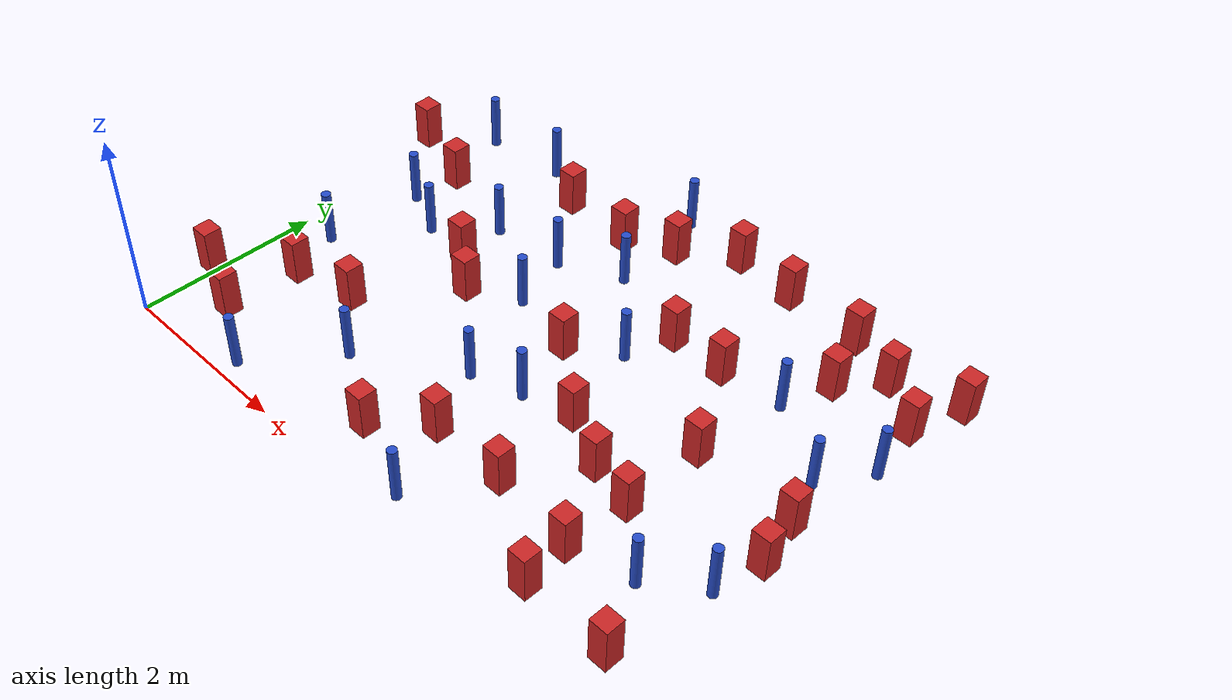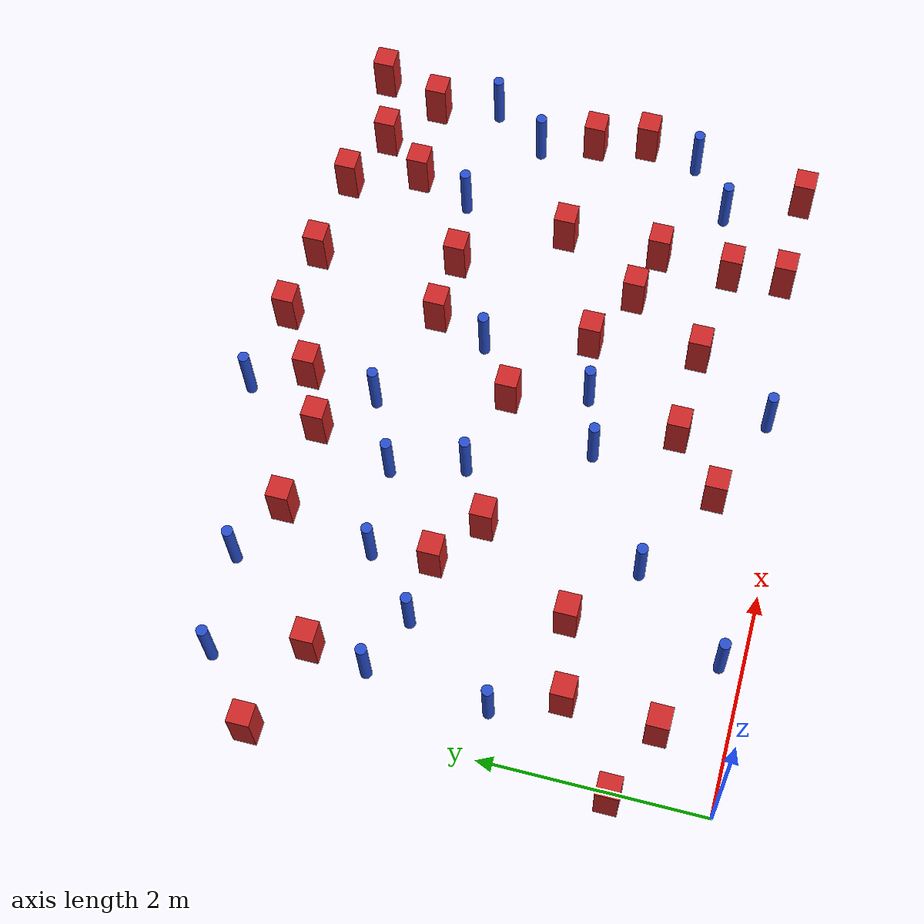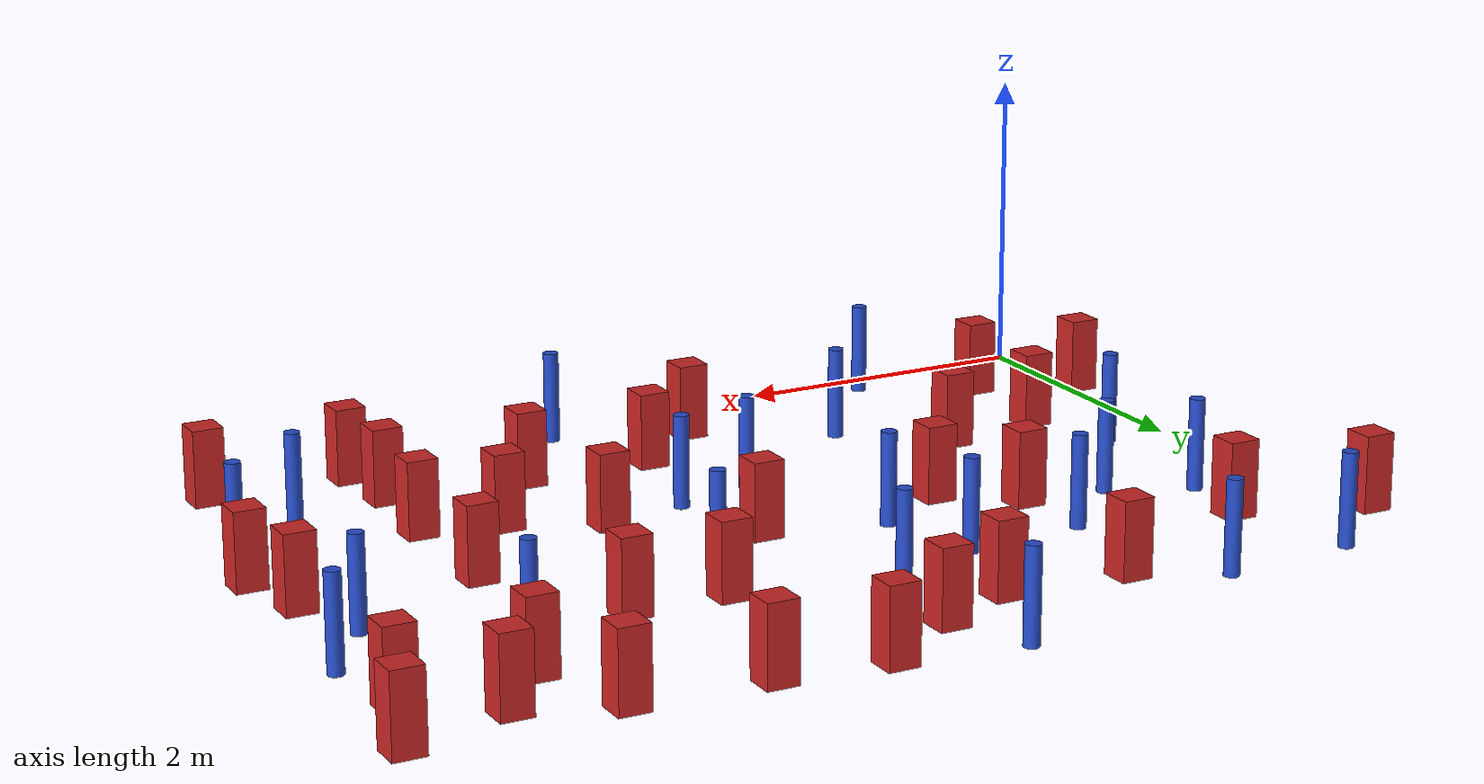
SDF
<sdf version="1.6">
 <model name="dense_88">
  <model name="pole_obstacle1">
   <static>true</static>
   <pose>3.00676567767 3.73780736281 7.38925637345e-09 -8.47170692798e-08 1.24976764939e-08 -1.74513093025e-07</pose>
   <link name="link">
    <pose>0 0 0.3 0 -0 0</pose>
    <inertial>
     <mass>1</mass>
     <inertia><ixx>0.145833</ixx><ixy>0</ixy><ixz>0</ixz><iyy>0.145833</iyy><iyz>0</iyz><izz>0.125</izz></inertia>
    </inertial>
    <collision name="collision">
     <geometry><cylinder><radius>0.05</radius><length>.6</length></cylinder></geometry>
    </collision>
    <visual name="visual">
     <geometry><cylinder><radius>0.05</radius><length>.6</length></cylinder></geometry>
     <material>
      <script><name>Gazebo/Blue</name><uri>file://media/materials/scripts/gazebo.material</uri></script>
     </material>
    </visual>
   </link>
  </model>
  <model name="square_post_obstacle8">
   <static>true</static>
   <pose>6.05506453243 0.368401354186 1.91545236811e-07 -7.35059704564e-06 1.12565212e-07 2.39332434364e-05</pose>
   <link name="link">
    <pose>0 0 0.25 0 -0 0</pose>
    <inertial>
     <mass>100</mass>
     <inertia>
      <ixx>0.166667</ixx>
      <ixy>0</ixy>
      <ixz>0</ixz>
      <iyy>0.166667</iyy>
      <iyz>0</iyz>
      <izz>0.166667</izz>
     </inertia>
    </inertial>
    <collision name="collision"><geometry><box><size>.2 .2 .5</size></box></geometry></collision>
    <visual name="visual">
     <geometry><box><size>.2 .2 .5</size></box></geometry>
     <material>
      <script><name>Gazebo/Red</name><uri>file://media/materials/scripts/gazebo.material</uri></script>
     </material>
    </visual>
   </link>
  </model>
  <model name="square_post_obstacle9">
   <static>true</static>
   <pose>2.03781863392 2.46468517248 1.91545236811e-07 -7.35059704564e-06 1.12565212e-07 2.39332434364e-05</pose>
   <link name="link">
    <pose>0 0 0.25 0 -0 0</pose>
    <inertial>
     <mass>100</mass>
     <inertia>
      <ixx>0.166667</ixx>
      <ixy>0</ixy>
      <ixz>0</ixz>
      <iyy>0.166667</iyy>
      <iyz>0</iyz>
      <izz>0.166667</izz>
     </inertia>
    </inertial>
    <collision name="collision"><geometry><box><size>.2 .2 .5</size></box></geometry></collision>
    <visual name="visual">
     <geometry><box><size>.2 .2 .5</size></box></geometry>
     <material>
      <script><name>Gazebo/Red</name><uri>file://media/materials/scripts/gazebo.material</uri></script>
     </material>
    </visual>
   </link>
  </model>
  <model name="pole_obstacle16">
   <static>true</static>
   <pose>0.417773265763 1.99657974552 7.38925637345e-09 -8.47170692799e-08 1.24976765022e-08 -1.74513093019e-07</pose>
   <link name="link">
    <pose>0 0 0.3 0 -0 0</pose>
    <inertial>
     <mass>1</mass>
     <inertia><ixx>0.145833</ixx><ixy>0</ixy><ixz>0</ixz><iyy>0.145833</iyy><iyz>0</iyz><izz>0.125</izz></inertia>
    </inertial>
    <collision name="collision">
     <geometry><cylinder><radius>0.05</radius><length>.6</length></cylinder></geometry>
    </collision>
    <visual name="visual">
     <geometry><cylinder><radius>0.05</radius><length>.6</length></cylinder></geometry>
     <material>
      <script><name>Gazebo/Blue</name><uri>file://media/materials/scripts/gazebo.material</uri></script>
     </material>
    </visual>
   </link>
  </model>
  <model name="square_post_obstacle17">
   <static>true</static>
   <pose>0.582227738402 3.61344862767 1.91545236811e-07 -7.35059704564e-06 1.12565212e-07 2.39332434364e-05</pose>
   <link name="link">
    <pose>0 0 0.25 0 -0 0</pose>
    <inertial>
     <mass>100</mass>
     <inertia>
      <ixx>0.166667</ixx>
      <ixy>0</ixy>
      <ixz>0</ixz>
      <iyy>0.166667</iyy>
      <iyz>0</iyz>
      <izz>0.166667</izz>
     </inertia>
    </inertial>
    <collision name="collision"><geometry><box><size>.2 .2 .5</size></box></geometry></collision>
    <visual name="visual">
     <geometry><box><size>.2 .2 .5</size></box></geometry>
     <material>
      <script><name>Gazebo/Red</name><uri>file://media/materials/scripts/gazebo.material</uri></script>
     </material>
    </visual>
   </link>
  </model>
  <model name="pole_obstacle21">
   <static>true</static>
   <pose>1.55318609625 3.35626687531 7.38925637345e-09 -8.47170692799e-08 1.24976765053e-08 -1.74513093017e-07</pose>
   <link name="link">
    <pose>0 0 0.3 0 -0 0</pose>
    <inertial>
     <mass>1</mass>
     <inertia><ixx>0.145833</ixx><ixy>0</ixy><ixz>0</ixz><iyy>0.145833</iyy><iyz>0</iyz><izz>0.125</izz></inertia>
    </inertial>
    <collision name="collision">
     <geometry><cylinder><radius>0.05</radius><length>.6</length></cylinder></geometry>
    </collision>
    <visual name="visual">
     <geometry><cylinder><radius>0.05</radius><length>.6</length></cylinder></geometry>
     <material>
      <script><name>Gazebo/Blue</name><uri>file://media/materials/scripts/gazebo.material</uri></script>
     </material>
    </visual>
   </link>
  </model>
  <model name="pole_obstacle23">
   <static>true</static>
   <pose>0.503475183956 3.09309964641 7.38925637345e-09 -8.471706928e-08 1.2497676512e-08 -1.74513093015e-07</pose>
   <link name="link">
    <pose>0 0 0.3 0 -0 0</pose>
    <inertial>
     <mass>1</mass>
     <inertia><ixx>0.145833</ixx><ixy>0</ixy><ixz>0</ixz><iyy>0.145833</iyy><iyz>0</iyz><izz>0.125</izz></inertia>
    </inertial>
    <collision name="collision">
     <geometry><cylinder><radius>0.05</radius><length>.6</length></cylinder></geometry>
    </collision>
    <visual name="visual">
     <geometry><cylinder><radius>0.05</radius><length>.6</length></cylinder></geometry>
     <material>
      <script><name>Gazebo/Blue</name><uri>file://media/materials/scripts/gazebo.material</uri></script>
     </material>
    </visual>
   </link>
  </model>
  <model name="pole_obstacle30">
   <static>true</static>
   <pose>2.36036367423 3.42401189032 7.38925637345e-09 -8.47170692798e-08 1.24976764939e-08 -1.74513093025e-07</pose>
   <link name="link">
    <pose>0 0 0.3 0 -0 0</pose>
    <inertial>
     <mass>1</mass>
     <inertia><ixx>0.145833</ixx><ixy>0</ixy><ixz>0</ixz><iyy>0.145833</iyy><iyz>0</iyz><izz>0.125</izz></inertia>
    </inertial>
    <collision name="collision">
     <geometry><cylinder><radius>0.05</radius><length>.6</length></cylinder></geometry>
    </collision>
    <visual name="visual">
     <geometry><cylinder><radius>0.05</radius><length>.6</length></cylinder></geometry>
     <material>
      <script><name>Gazebo/Blue</name><uri>file://media/materials/scripts/gazebo.material</uri></script>
     </material>
    </visual>
   </link>
  </model>
  <model name="pole_obstacle36">
   <static>true</static>
   <pose>3.79349859983 2.92689420763 7.38925637345e-09 -8.47170692798e-08 1.24976764939e-08 -1.74513093025e-07</pose>
   <link name="link">
    <pose>0 0 0.3 0 -0 0</pose>
    <inertial>
     <mass>1</mass>
     <inertia><ixx>0.145833</ixx><ixy>0</ixy><ixz>0</ixz><iyy>0.145833</iyy><iyz>0</iyz><izz>0.125</izz></inertia>
    </inertial>
    <collision name="collision">
     <geometry><cylinder><radius>0.05</radius><length>.6</length></cylinder></geometry>
    </collision>
    <visual name="visual">
     <geometry><cylinder><radius>0.05</radius><length>.6</length></cylinder></geometry>
     <material>
      <script><name>Gazebo/Blue</name><uri>file://media/materials/scripts/gazebo.material</uri></script>
     </material>
    </visual>
   </link>
  </model>
  <model name="pole_obstacle41">
   <static>true</static>
   <pose>0.337257957748 4.41213435781 7.38925637345e-09 -8.471706928e-08 1.24976765079e-08 -1.74513093015e-07</pose>
   <link name="link">
    <pose>0 0 0.3 0 -0 0</pose>
    <inertial>
     <mass>1</mass>
     <inertia><ixx>0.145833</ixx><ixy>0</ixy><ixz>0</ixz><iyy>0.145833</iyy><iyz>0</iyz><izz>0.125</izz></inertia>
    </inertial>
    <collision name="collision">
     <geometry><cylinder><radius>0.05</radius><length>.6</length></cylinder></geometry>
    </collision>
    <visual name="visual">
     <geometry><cylinder><radius>0.05</radius><length>.6</length></cylinder></geometry>
     <material>
      <script><name>Gazebo/Blue</name><uri>file://media/materials/scripts/gazebo.material</uri></script>
     </material>
    </visual>
   </link>
  </model>
  <model name="pole_obstacle45">
   <static>true</static>
   <pose>6.23284091133 1.44103149627 7.38925637345e-09 -8.471706928e-08 1.24976765134e-08 -1.74513093015e-07</pose>
   <link name="link">
    <pose>0 0 0.3 0 -0 0</pose>
    <inertial>
     <mass>1</mass>
     <inertia><ixx>0.145833</ixx><ixy>0</ixy><ixz>0</ixz><iyy>0.145833</iyy><iyz>0</iyz><izz>0.125</izz></inertia>
    </inertial>
    <collision name="collision">
     <geometry><cylinder><radius>0.05</radius><length>.6</length></cylinder></geometry>
    </collision>
    <visual name="visual">
     <geometry><cylinder><radius>0.05</radius><length>.6</length></cylinder></geometry>
     <material>
      <script><name>Gazebo/Blue</name><uri>file://media/materials/scripts/gazebo.material</uri></script>
     </material>
    </visual>
   </link>
  </model>
  <model name="square_post_obstacle36">
   <static>true</static>
   <pose>1.34840584041 1.54676185632 1.91545236811e-07 -7.35059704564e-06 1.12565212e-07 2.39332434364e-05</pose>
   <link name="link">
    <pose>0 0 0.25 0 -0 0</pose>
    <inertial>
     <mass>100</mass>
     <inertia>
      <ixx>0.166667</ixx>
      <ixy>0</ixy>
      <ixz>0</ixz>
      <iyy>0.166667</iyy>
      <iyz>0</iyz>
      <izz>0.166667</izz>
     </inertia>
    </inertial>
    <collision name="collision"><geometry><box><size>.2 .2 .5</size></box></geometry></collision>
    <visual name="visual">
     <geometry><box><size>.2 .2 .5</size></box></geometry>
     <material>
      <script><name>Gazebo/Red</name><uri>file://media/materials/scripts/gazebo.material</uri></script>
     </material>
    </visual>
   </link>
  </model>
  <model name="square_post_obstacle39">
   <static>true</static>
   <pose>5.21998832689 4.64930276739 1.91545236811e-07 -7.35059704564e-06 1.12565212e-07 2.39332434364e-05</pose>
   <link name="link">
    <pose>0 0 0.25 0 -0 0</pose>
    <inertial>
     <mass>100</mass>
     <inertia>
      <ixx>0.166667</ixx>
      <ixy>0</ixy>
      <ixz>0</ixz>
      <iyy>0.166667</iyy>
      <iyz>0</iyz>
      <izz>0.166667</izz>
     </inertia>
    </inertial>
    <collision name="collision"><geometry><box><size>.2 .2 .5</size></box></geometry></collision>
    <visual name="visual">
     <geometry><box><size>.2 .2 .5</size></box></geometry>
     <material>
      <script><name>Gazebo/Red</name><uri>file://media/materials/scripts/gazebo.material</uri></script>
     </material>
    </visual>
   </link>
  </model>
  <model name="square_post_obstacle41">
   <static>true</static>
   <pose>4.59716601824 3.40265601159 1.91545236811e-07 -7.35059704564e-06 1.12565212e-07 2.39332434364e-05</pose>
   <link name="link">
    <pose>0 0 0.25 0 -0 0</pose>
    <inertial>
     <mass>100</mass>
     <inertia>
      <ixx>0.166667</ixx>
      <ixy>0</ixy>
      <ixz>0</ixz>
      <iyy>0.166667</iyy>
      <iyz>0</iyz>
      <izz>0.166667</izz>
     </inertia>
    </inertial>
    <collision name="collision"><geometry><box><size>.2 .2 .5</size></box></geometry></collision>
    <visual name="visual">
     <geometry><box><size>.2 .2 .5</size></box></geometry>
     <material>
      <script><name>Gazebo/Red</name><uri>file://media/materials/scripts/gazebo.material</uri></script>
     </material>
    </visual>
   </link>
  </model>
  <model name="pole_obstacle63">
   <static>true</static>
   <pose>2.54129996785 2.76347063465 7.38925637345e-09 -8.47170692798e-08 1.24976764939e-08 -1.74513093025e-07</pose>
   <link name="link">
    <pose>0 0 0.3 0 -0 0</pose>
    <inertial>
     <mass>1</mass>
     <inertia><ixx>0.145833</ixx><ixy>0</ixy><ixz>0</ixz><iyy>0.145833</iyy><iyz>0</iyz><izz>0.125</izz></inertia>
    </inertial>
    <collision name="collision">
     <geometry><cylinder><radius>0.05</radius><length>.6</length></cylinder></geometry>
    </collision>
    <visual name="visual">
     <geometry><cylinder><radius>0.05</radius><length>.6</length></cylinder></geometry>
     <material>
      <script><name>Gazebo/Blue</name><uri>file://media/materials/scripts/gazebo.material</uri></script>
     </material>
    </visual>
   </link>
  </model>
  <model name="pole_obstacle64">
   <static>true</static>
   <pose>1.94392713426 1.04446652824 7.38925637345e-09 -8.471706928e-08 1.24976765116e-08 -1.74513093013e-07</pose>
   <link name="link">
    <pose>0 0 0.3 0 -0 0</pose>
    <inertial>
     <mass>1</mass>
     <inertia><ixx>0.145833</ixx><ixy>0</ixy><ixz>0</ixz><iyy>0.145833</iyy><iyz>0</iyz><izz>0.125</izz></inertia>
    </inertial>
    <collision name="collision">
     <geometry><cylinder><radius>0.05</radius><length>.6</length></cylinder></geometry>
    </collision>
    <visual name="visual">
     <geometry><cylinder><radius>0.05</radius><length>.6</length></cylinder></geometry>
     <material>
      <script><name>Gazebo/Blue</name><uri>file://media/materials/scripts/gazebo.material</uri></script>
     </material>
    </visual>
   </link>
  </model>
  <model name="pole_obstacle67">
   <static>true</static>
   <pose>1.23654706711 4.49518239781 7.38925637345e-09 -8.47170692799e-08 1.24976765033e-08 -1.74513093018e-07</pose>
   <link name="link">
    <pose>0 0 0.3 0 -0 0</pose>
    <inertial>
     <mass>1</mass>
     <inertia><ixx>0.145833</ixx><ixy>0</ixy><ixz>0</ixz><iyy>0.145833</iyy><iyz>0</iyz><izz>0.125</izz></inertia>
    </inertial>
    <collision name="collision">
     <geometry><cylinder><radius>0.05</radius><length>.6</length></cylinder></geometry>
    </collision>
    <visual name="visual">
     <geometry><cylinder><radius>0.05</radius><length>.6</length></cylinder></geometry>
     <material>
      <script><name>Gazebo/Blue</name><uri>file://media/materials/scripts/gazebo.material</uri></script>
     </material>
    </visual>
   </link>
  </model>
  <model name="square_post_obstacle51">
   <static>true</static>
   <pose>5.13246928677 2.47707967401 1.91545236811e-07 -7.35059704564e-06 1.12565212e-07 2.39332434364e-05</pose>
   <link name="link">
    <pose>0 0 0.25 0 -0 0</pose>
    <inertial>
     <mass>100</mass>
     <inertia>
      <ixx>0.166667</ixx>
      <ixy>0</ixy>
      <ixz>0</ixz>
      <iyy>0.166667</iyy>
      <iyz>0</iyz>
      <izz>0.166667</izz>
     </inertia>
    </inertial>
    <collision name="collision"><geometry><box><size>.2 .2 .5</size></box></geometry></collision>
    <visual name="visual">
     <geometry><box><size>.2 .2 .5</size></box></geometry>
     <material>
      <script><name>Gazebo/Red</name><uri>file://media/materials/scripts/gazebo.material</uri></script>
     </material>
    </visual>
   </link>
  </model>
  <model name="square_post_obstacle55">
   <static>true</static>
   <pose>4.05338056155 1.98004612645 1.91545236811e-07 -7.35059704564e-06 1.12565212e-07 2.39332434364e-05</pose>
   <link name="link">
    <pose>0 0 0.25 0 -0 0</pose>
    <inertial>
     <mass>100</mass>
     <inertia>
      <ixx>0.166667</ixx>
      <ixy>0</ixy>
      <ixz>0</ixz>
      <iyy>0.166667</iyy>
      <iyz>0</iyz>
      <izz>0.166667</izz>
     </inertia>
    </inertial>
    <collision name="collision"><geometry><box><size>.2 .2 .5</size></box></geometry></collision>
    <visual name="visual">
     <geometry><box><size>.2 .2 .5</size></box></geometry>
     <material>
      <script><name>Gazebo/Red</name><uri>file://media/materials/scripts/gazebo.material</uri></script>
     </material>
    </visual>
   </link>
  </model>
  <model name="square_post_obstacle58">
   <static>true</static>
   <pose>6.34560710064 1.94424547865 1.91545236811e-07 -7.35059704564e-06 1.12565212e-07 2.39332434364e-05</pose>
   <link name="link">
    <pose>0 0 0.25 0 -0 0</pose>
    <inertial>
     <mass>100</mass>
     <inertia>
      <ixx>0.166667</ixx>
      <ixy>0</ixy>
      <ixz>0</ixz>
      <iyy>0.166667</iyy>
      <iyz>0</iyz>
      <izz>0.166667</izz>
     </inertia>
    </inertial>
    <collision name="collision"><geometry><box><size>.2 .2 .5</size></box></geometry></collision>
    <visual name="visual">
     <geometry><box><size>.2 .2 .5</size></box></geometry>
     <material>
      <script><name>Gazebo/Red</name><uri>file://media/materials/scripts/gazebo.material</uri></script>
     </material>
    </visual>
   </link>
  </model>
  <model name="square_post_obstacle60">
   <static>true</static>
   <pose>6.22812129086 2.44280715354 1.91545236811e-07 -7.35059704564e-06 1.12565212e-07 2.39332434364e-05</pose>
   <link name="link">
    <pose>0 0 0.25 0 -0 0</pose>
    <inertial>
     <mass>100</mass>
     <inertia>
      <ixx>0.166667</ixx>
      <ixy>0</ixy>
      <ixz>0</ixz>
      <iyy>0.166667</iyy>
      <iyz>0</iyz>
      <izz>0.166667</izz>
     </inertia>
    </inertial>
    <collision name="collision"><geometry><box><size>.2 .2 .5</size></box></geometry></collision>
    <visual name="visual">
     <geometry><box><size>.2 .2 .5</size></box></geometry>
     <material>
      <script><name>Gazebo/Red</name><uri>file://media/materials/scripts/gazebo.material</uri></script>
     </material>
    </visual>
   </link>
  </model>
  <model name="square_post_obstacle61">
   <static>true</static>
   <pose>6.28039331181 4.05074198997 1.91545236811e-07 -7.35059704564e-06 1.12565212e-07 2.39332434364e-05</pose>
   <link name="link">
    <pose>0 0 0.25 0 -0 0</pose>
    <inertial>
     <mass>100</mass>
     <inertia>
      <ixx>0.166667</ixx>
      <ixy>0</ixy>
      <ixz>0</ixz>
      <iyy>0.166667</iyy>
      <iyz>0</iyz>
      <izz>0.166667</izz>
     </inertia>
    </inertial>
    <collision name="collision"><geometry><box><size>.2 .2 .5</size></box></geometry></collision>
    <visual name="visual">
     <geometry><box><size>.2 .2 .5</size></box></geometry>
     <material>
      <script><name>Gazebo/Red</name><uri>file://media/materials/scripts/gazebo.material</uri></script>
     </material>
    </visual>
   </link>
  </model>
  <model name="square_post_obstacle63">
   <static>true</static>
   <pose>2.79519327134 0.554088566454 1.91545236811e-07 -7.35059704564e-06 1.12565212e-07 2.39332434364e-05</pose>
   <link name="link">
    <pose>0 0 0.25 0 -0 0</pose>
    <inertial>
     <mass>100</mass>
     <inertia>
      <ixx>0.166667</ixx>
      <ixy>0</ixy>
      <ixz>0</ixz>
      <iyy>0.166667</iyy>
      <iyz>0</iyz>
      <izz>0.166667</izz>
     </inertia>
    </inertial>
    <collision name="collision"><geometry><box><size>.2 .2 .5</size></box></geometry></collision>
    <visual name="visual">
     <geometry><box><size>.2 .2 .5</size></box></geometry>
     <material>
      <script><name>Gazebo/Red</name><uri>file://media/materials/scripts/gazebo.material</uri></script>
     </material>
    </visual>
   </link>
  </model>
  <model name="square_post_obstacle65">
   <static>true</static>
   <pose>1.59475968034 2.80629622628 1.91545236811e-07 -7.35059704564e-06 1.12565212e-07 2.39332434364e-05</pose>
   <link name="link">
    <pose>0 0 0.25 0 -0 0</pose>
    <inertial>
     <mass>100</mass>
     <inertia>
      <ixx>0.166667</ixx>
      <ixy>0</ixy>
      <ixz>0</ixz>
      <iyy>0.166667</iyy>
      <iyz>0</iyz>
      <izz>0.166667</izz>
     </inertia>
    </inertial>
    <collision name="collision"><geometry><box><size>.2 .2 .5</size></box></geometry></collision>
    <visual name="visual">
     <geometry><box><size>.2 .2 .5</size></box></geometry>
     <material>
      <script><name>Gazebo/Red</name><uri>file://media/materials/scripts/gazebo.material</uri></script>
     </material>
    </visual>
   </link>
  </model>
  <model name="pole_obstacle82">
   <static>true</static>
   <pose>3.4986279685 1.86415683768 7.38925637345e-09 -8.471706928e-08 1.24976765152e-08 -1.74513093012e-07</pose>
   <link name="link">
    <pose>0 0 0.3 0 -0 0</pose>
    <inertial>
     <mass>1</mass>
     <inertia><ixx>0.145833</ixx><ixy>0</ixy><ixz>0</ixz><iyy>0.145833</iyy><iyz>0</iyz><izz>0.125</izz></inertia>
    </inertial>
    <collision name="collision">
     <geometry><cylinder><radius>0.05</radius><length>.6</length></cylinder></geometry>
    </collision>
    <visual name="visual">
     <geometry><cylinder><radius>0.05</radius><length>.6</length></cylinder></geometry>
     <material>
      <script><name>Gazebo/Blue</name><uri>file://media/materials/scripts/gazebo.material</uri></script>
     </material>
    </visual>
   </link>
  </model>
  <model name="pole_obstacle89">
   <static>true</static>
   <pose>1.28467313891 0.200555245513 7.38925637345e-09 -8.47170692799e-08 1.24976765057e-08 -1.74513093016e-07</pose>
   <link name="link">
    <pose>0 0 0.3 0 -0 0</pose>
    <inertial>
     <mass>1</mass>
     <inertia><ixx>0.145833</ixx><ixy>0</ixy><ixz>0</ixz><iyy>0.145833</iyy><iyz>0</iyz><izz>0.125</izz></inertia>
    </inertial>
    <collision name="collision">
     <geometry><cylinder><radius>0.05</radius><length>.6</length></cylinder></geometry>
    </collision>
    <visual name="visual">
     <geometry><cylinder><radius>0.05</radius><length>.6</length></cylinder></geometry>
     <material>
      <script><name>Gazebo/Blue</name><uri>file://media/materials/scripts/gazebo.material</uri></script>
     </material>
    </visual>
   </link>
  </model>
  <model name="square_post_obstacle79">
   <static>true</static>
   <pose>3.6672656424 4.77400452804 1.91545236811e-07 -7.35059704564e-06 1.12565212e-07 2.39332434364e-05</pose>
   <link name="link">
    <pose>0 0 0.25 0 -0 0</pose>
    <inertial>
     <mass>100</mass>
     <inertia>
      <ixx>0.166667</ixx>
      <ixy>0</ixy>
      <ixz>0</ixz>
      <iyy>0.166667</iyy>
      <iyz>0</iyz>
      <izz>0.166667</izz>
     </inertia>
    </inertial>
    <collision name="collision"><geometry><box><size>.2 .2 .5</size></box></geometry></collision>
    <visual name="visual">
     <geometry><box><size>.2 .2 .5</size></box></geometry>
     <material>
      <script><name>Gazebo/Red</name><uri>file://media/materials/scripts/gazebo.material</uri></script>
     </material>
    </visual>
   </link>
  </model>
  <model name="square_post_obstacle84">
   <static>true</static>
   <pose>5.12848473698 1.56891961007 1.91545236811e-07 -7.35059704564e-06 1.12565212e-07 2.39332434364e-05</pose>
   <link name="link">
    <pose>0 0 0.25 0 -0 0</pose>
    <inertial>
     <mass>100</mass>
     <inertia>
      <ixx>0.166667</ixx>
      <ixy>0</ixy>
      <ixz>0</ixz>
      <iyy>0.166667</iyy>
      <iyz>0</iyz>
      <izz>0.166667</izz>
     </inertia>
    </inertial>
    <collision name="collision"><geometry><box><size>.2 .2 .5</size></box></geometry></collision>
    <visual name="visual">
     <geometry><box><size>.2 .2 .5</size></box></geometry>
     <material>
      <script><name>Gazebo/Red</name><uri>file://media/materials/scripts/gazebo.material</uri></script>
     </material>
    </visual>
   </link>
  </model>
  <model name="square_post_obstacle96">
   <static>true</static>
   <pose>1.77273773107 4.21609472806 1.91545236811e-07 -7.35059704564e-06 1.12565212e-07 2.39332434364e-05</pose>
   <link name="link">
    <pose>0 0 0.25 0 -0 0</pose>
    <inertial>
     <mass>100</mass>
     <inertia>
      <ixx>0.166667</ixx>
      <ixy>0</ixy>
      <ixz>0</ixz>
      <iyy>0.166667</iyy>
      <iyz>0</iyz>
      <izz>0.166667</izz>
     </inertia>
    </inertial>
    <collision name="collision"><geometry><box><size>.2 .2 .5</size></box></geometry></collision>
    <visual name="visual">
     <geometry><box><size>.2 .2 .5</size></box></geometry>
     <material>
      <script><name>Gazebo/Red</name><uri>file://media/materials/scripts/gazebo.material</uri></script>
     </material>
    </visual>
   </link>
  </model>
  <model name="pole_obstacle107">
   <static>true</static>
   <pose>5.72319153716 1.0579496729 7.38925637345e-09 -8.471706928e-08 1.24976765134e-08 -1.74513093015e-07</pose>
   <link name="link">
    <pose>0 0 0.3 0 -0 0</pose>
    <inertial>
     <mass>1</mass>
     <inertia><ixx>0.145833</ixx><ixy>0</ixy><ixz>0</ixz><iyy>0.145833</iyy><iyz>0</iyz><izz>0.125</izz></inertia>
    </inertial>
    <collision name="collision">
     <geometry><cylinder><radius>0.05</radius><length>.6</length></cylinder></geometry>
    </collision>
    <visual name="visual">
     <geometry><cylinder><radius>0.05</radius><length>.6</length></cylinder></geometry>
     <material>
      <script><name>Gazebo/Blue</name><uri>file://media/materials/scripts/gazebo.material</uri></script>
     </material>
    </visual>
   </link>
  </model>
  <model name="pole_obstacle109">
   <static>true</static>
   <pose>2.95640503992 1.69918804623 7.38925637345e-09 -8.471706928e-08 1.24976765152e-08 -1.74513093012e-07</pose>
   <link name="link">
    <pose>0 0 0.3 0 -0 0</pose>
    <inertial>
     <mass>1</mass>
     <inertia><ixx>0.145833</ixx><ixy>0</ixy><ixz>0</ixz><iyy>0.145833</iyy><iyz>0</iyz><izz>0.125</izz></inertia>
    </inertial>
    <collision name="collision">
     <geometry><cylinder><radius>0.05</radius><length>.6</length></cylinder></geometry>
    </collision>
    <visual name="visual">
     <geometry><cylinder><radius>0.05</radius><length>.6</length></cylinder></geometry>
     <material>
      <script><name>Gazebo/Blue</name><uri>file://media/materials/scripts/gazebo.material</uri></script>
     </material>
    </visual>
   </link>
  </model>
  <model name="square_post_obstacle106">
   <static>true</static>
   <pose>3.29907235706 0.99927008219 1.91545236811e-07 -7.35059704564e-06 1.12565212e-07 2.39332434364e-05</pose>
   <link name="link">
    <pose>0 0 0.25 0 -0 0</pose>
    <inertial>
     <mass>100</mass>
     <inertia>
      <ixx>0.166667</ixx>
      <ixy>0</ixy>
      <ixz>0</ixz>
      <iyy>0.166667</iyy>
      <iyz>0</iyz>
      <izz>0.166667</izz>
     </inertia>
    </inertial>
    <collision name="collision"><geometry><box><size>.2 .2 .5</size></box></geometry></collision>
    <visual name="visual">
     <geometry><box><size>.2 .2 .5</size></box></geometry>
     <material>
      <script><name>Gazebo/Red</name><uri>file://media/materials/scripts/gazebo.material</uri></script>
     </material>
    </visual>
   </link>
  </model>
  <model name="square_post_obstacle108">
   <static>true</static>
   <pose>5.44771622154 4.00115317048 1.91545236811e-07 -7.35059704564e-06 1.12565212e-07 2.39332434364e-05</pose>
   <link name="link">
    <pose>0 0 0.25 0 -0 0</pose>
    <inertial>
     <mass>100</mass>
     <inertia>
      <ixx>0.166667</ixx>
      <ixy>0</ixy>
      <ixz>0</ixz>
      <iyy>0.166667</iyy>
      <iyz>0</iyz>
      <izz>0.166667</izz>
     </inertia>
    </inertial>
    <collision name="collision"><geometry><box><size>.2 .2 .5</size></box></geometry></collision>
    <visual name="visual">
     <geometry><box><size>.2 .2 .5</size></box></geometry>
     <material>
      <script><name>Gazebo/Red</name><uri>file://media/materials/scripts/gazebo.material</uri></script>
     </material>
    </visual>
   </link>
  </model>
  <model name="pole_obstacle115">
   <static>true</static>
   <pose>6.05218838079 2.95087385496 7.38925637345e-09 -8.47170692798e-08 1.24976764937e-08 -1.74513093023e-07</pose>
   <link name="link">
    <pose>0 0 0.3 0 -0 0</pose>
    <inertial>
     <mass>1</mass>
     <inertia><ixx>0.145833</ixx><ixy>0</ixy><ixz>0</ixz><iyy>0.145833</iyy><iyz>0</iyz><izz>0.125</izz></inertia>
    </inertial>
    <collision name="collision">
     <geometry><cylinder><radius>0.05</radius><length>.6</length></cylinder></geometry>
    </collision>
    <visual name="visual">
     <geometry><cylinder><radius>0.05</radius><length>.6</length></cylinder></geometry>
     <material>
      <script><name>Gazebo/Blue</name><uri>file://media/materials/scripts/gazebo.material</uri></script>
     </material>
    </visual>
   </link>
  </model>
  <model name="square_post_obstacle113">
   <static>true</static>
   <pose>5.12426211553 0.378596422547 1.91545236811e-07 -7.35059704564e-06 1.12565212e-07 2.39332434364e-05</pose>
   <link name="link">
    <pose>0 0 0.25 0 -0 0</pose>
    <inertial>
     <mass>100</mass>
     <inertia>
      <ixx>0.166667</ixx>
      <ixy>0</ixy>
      <ixz>0</ixz>
      <iyy>0.166667</iyy>
      <iyz>0</iyz>
      <izz>0.166667</izz>
     </inertia>
    </inertial>
    <collision name="collision"><geometry><box><size>.2 .2 .5</size></box></geometry></collision>
    <visual name="visual">
     <geometry><box><size>.2 .2 .5</size></box></geometry>
     <material>
      <script><name>Gazebo/Red</name><uri>file://media/materials/scripts/gazebo.material</uri></script>
     </material>
    </visual>
   </link>
  </model>
  <model name="square_post_obstacle114">
   <static>true</static>
   <pose>4.36871104881 4.69713074803 1.91545236811e-07 -7.35059704564e-06 1.12565212e-07 2.39332434364e-05</pose>
   <link name="link">
    <pose>0 0 0.25 0 -0 0</pose>
    <inertial>
     <mass>100</mass>
     <inertia>
      <ixx>0.166667</ixx>
      <ixy>0</ixy>
      <ixz>0</ixz>
      <iyy>0.166667</iyy>
      <iyz>0</iyz>
      <izz>0.166667</izz>
     </inertia>
    </inertial>
    <collision name="collision"><geometry><box><size>.2 .2 .5</size></box></geometry></collision>
    <visual name="visual">
     <geometry><box><size>.2 .2 .5</size></box></geometry>
     <material>
      <script><name>Gazebo/Red</name><uri>file://media/materials/scripts/gazebo.material</uri></script>
     </material>
    </visual>
   </link>
  </model>
  <model name="square_post_obstacle115">
   <static>true</static>
   <pose>3.31583319987 2.5744230659 1.91545236811e-07 -7.35059704564e-06 1.12565212e-07 2.39332434364e-05</pose>
   <link name="link">
    <pose>0 0 0.25 0 -0 0</pose>
    <inertial>
     <mass>100</mass>
     <inertia>
      <ixx>0.166667</ixx>
      <ixy>0</ixy>
      <ixz>0</ixz>
      <iyy>0.166667</iyy>
      <iyz>0</iyz>
      <izz>0.166667</izz>
     </inertia>
    </inertial>
    <collision name="collision"><geometry><box><size>.2 .2 .5</size></box></geometry></collision>
    <visual name="visual">
     <geometry><box><size>.2 .2 .5</size></box></geometry>
     <material>
      <script><name>Gazebo/Red</name><uri>file://media/materials/scripts/gazebo.material</uri></script>
     </material>
    </visual>
   </link>
  </model>
  <model name="square_post_obstacle116">
   <static>true</static>
   <pose>5.78811146953 4.42310288406 1.91545236811e-07 -7.35059704564e-06 1.12565212e-07 2.39332434364e-05</pose>
   <link name="link">
    <pose>0 0 0.25 0 -0 0</pose>
    <inertial>
     <mass>100</mass>
     <inertia>
      <ixx>0.166667</ixx>
      <ixy>0</ixy>
      <ixz>0</ixz>
      <iyy>0.166667</iyy>
      <iyz>0</iyz>
      <izz>0.166667</izz>
     </inertia>
    </inertial>
    <collision name="collision"><geometry><box><size>.2 .2 .5</size></box></geometry></collision>
    <visual name="visual">
     <geometry><box><size>.2 .2 .5</size></box></geometry>
     <material>
      <script><name>Gazebo/Red</name><uri>file://media/materials/scripts/gazebo.material</uri></script>
     </material>
    </visual>
   </link>
  </model>
  <model name="square_post_obstacle119">
   <static>true</static>
   <pose>-0.225609458666 3.90076886565 1.91545236811e-07 -7.35059704564e-06 1.12565212e-07 2.39332434364e-05</pose>
   <link name="link">
    <pose>0 0 0.25 0 -0 0</pose>
    <inertial>
     <mass>100</mass>
     <inertia>
      <ixx>0.166667</ixx>
      <ixy>0</ixy>
      <ixz>0</ixz>
      <iyy>0.166667</iyy>
      <iyz>0</iyz>
      <izz>0.166667</izz>
     </inertia>
    </inertial>
    <collision name="collision"><geometry><box><size>.2 .2 .5</size></box></geometry></collision>
    <visual name="visual">
     <geometry><box><size>.2 .2 .5</size></box></geometry>
     <material>
      <script><name>Gazebo/Red</name><uri>file://media/materials/scripts/gazebo.material</uri></script>
     </material>
    </visual>
   </link>
  </model>
  <model name="square_post_obstacle129">
   <static>true</static>
   <pose>6.47381973206 4.63207363439 1.91545236811e-07 -7.35059704564e-06 1.12565212e-07 2.39332434364e-05</pose>
   <link name="link">
    <pose>0 0 0.25 0 -0 0</pose>
    <inertial>
     <mass>100</mass>
     <inertia>
      <ixx>0.166667</ixx>
      <ixy>0</ixy>
      <ixz>0</ixz>
      <iyy>0.166667</iyy>
      <iyz>0</iyz>
      <izz>0.166667</izz>
     </inertia>
    </inertial>
    <collision name="collision"><geometry><box><size>.2 .2 .5</size></box></geometry></collision>
    <visual name="visual">
     <geometry><box><size>.2 .2 .5</size></box></geometry>
     <material>
      <script><name>Gazebo/Red</name><uri>file://media/materials/scripts/gazebo.material</uri></script>
     </material>
    </visual>
   </link>
  </model>
  <model name="square_post_obstacle131">
   <static>true</static>
   <pose>2.59447474805 4.15691205259 1.91545236811e-07 -7.35059704564e-06 1.12565212e-07 2.39332434364e-05</pose>
   <link name="link">
    <pose>0 0 0.25 0 -0 0</pose>
    <inertial>
     <mass>100</mass>
     <inertia>
      <ixx>0.166667</ixx>
      <ixy>0</ixy>
      <ixz>0</ixz>
      <iyy>0.166667</iyy>
      <iyz>0</iyz>
      <izz>0.166667</izz>
     </inertia>
    </inertial>
    <collision name="collision"><geometry><box><size>.2 .2 .5</size></box></geometry></collision>
    <visual name="visual">
     <geometry><box><size>.2 .2 .5</size></box></geometry>
     <material>
      <script><name>Gazebo/Red</name><uri>file://media/materials/scripts/gazebo.material</uri></script>
     </material>
    </visual>
   </link>
  </model>
  <model name="square_post_obstacle145">
   <static>true</static>
   <pose>0.585488936397 0.589266131785 1.91545236811e-07 -7.35059704564e-06 1.12565212e-07 2.39332434364e-05</pose>
   <link name="link">
    <pose>0 0 0.25 0 -0 0</pose>
    <inertial>
     <mass>100</mass>
     <inertia>
      <ixx>0.166667</ixx>
      <ixy>0</ixy>
      <ixz>0</ixz>
      <iyy>0.166667</iyy>
      <iyz>0</iyz>
      <izz>0.166667</izz>
     </inertia>
    </inertial>
    <collision name="collision"><geometry><box><size>.2 .2 .5</size></box></geometry></collision>
    <visual name="visual">
     <geometry><box><size>.2 .2 .5</size></box></geometry>
     <material>
      <script><name>Gazebo/Red</name><uri>file://media/materials/scripts/gazebo.material</uri></script>
     </material>
    </visual>
   </link>
  </model>
  <model name="square_post_obstacle150">
   <static>true</static>
   <pose>3.11073169026 4.3991337766 1.91545236811e-07 -7.35059704564e-06 1.12565212e-07 2.39332434364e-05</pose>
   <link name="link">
    <pose>0 0 0.25 0 -0 0</pose>
    <inertial>
     <mass>100</mass>
     <inertia>
      <ixx>0.166667</ixx>
      <ixy>0</ixy>
      <ixz>0</ixz>
      <iyy>0.166667</iyy>
      <iyz>0</iyz>
      <izz>0.166667</izz>
     </inertia>
    </inertial>
    <collision name="collision"><geometry><box><size>.2 .2 .5</size></box></geometry></collision>
    <visual name="visual">
     <geometry><box><size>.2 .2 .5</size></box></geometry>
     <material>
      <script><name>Gazebo/Red</name><uri>file://media/materials/scripts/gazebo.material</uri></script>
     </material>
    </visual>
   </link>
  </model>
  <model name="pole_obstacle163">
   <static>true</static>
   <pose>2.87473282468 4.89448850796 7.38925637345e-09 -8.47170692798e-08 1.24976765033e-08 -1.74513093019e-07</pose>
   <link name="link">
    <pose>0 0 0.3 0 -0 0</pose>
    <inertial>
     <mass>1</mass>
     <inertia><ixx>0.145833</ixx><ixy>0</ixy><ixz>0</ixz><iyy>0.145833</iyy><iyz>0</iyz><izz>0.125</izz></inertia>
    </inertial>
    <collision name="collision">
     <geometry><cylinder><radius>0.05</radius><length>.6</length></cylinder></geometry>
    </collision>
    <visual name="visual">
     <geometry><cylinder><radius>0.05</radius><length>.6</length></cylinder></geometry>
     <material>
      <script><name>Gazebo/Blue</name><uri>file://media/materials/scripts/gazebo.material</uri></script>
     </material>
    </visual>
   </link>
  </model>
  <model name="pole_obstacle164">
   <static>true</static>
   <pose>3.63328639066 0.237684599191 7.38925637345e-09 -8.471706928e-08 1.24976765149e-08 -1.74513093013e-07</pose>
   <link name="link">
    <pose>0 0 0.3 0 -0 0</pose>
    <inertial>
     <mass>1</mass>
     <inertia><ixx>0.145833</ixx><ixy>0</ixy><ixz>0</ixz><iyy>0.145833</iyy><iyz>0</iyz><izz>0.125</izz></inertia>
    </inertial>
    <collision name="collision">
     <geometry><cylinder><radius>0.05</radius><length>.6</length></cylinder></geometry>
    </collision>
    <visual name="visual">
     <geometry><cylinder><radius>0.05</radius><length>.6</length></cylinder></geometry>
     <material>
      <script><name>Gazebo/Blue</name><uri>file://media/materials/scripts/gazebo.material</uri></script>
     </material>
    </visual>
   </link>
  </model>
  <model name="square_post_obstacle162">
   <static>true</static>
   <pose>-0.0759354398667 0.86090251827 1.91545236811e-07 -7.35059704564e-06 1.12565212e-07 2.39332434364e-05</pose>
   <link name="link">
    <pose>0 0 0.25 0 -0 0</pose>
    <inertial>
     <mass>100</mass>
     <inertia>
      <ixx>0.166667</ixx>
      <ixy>0</ixy>
      <ixz>0</ixz>
      <iyy>0.166667</iyy>
      <iyz>0</iyz>
      <izz>0.166667</izz>
     </inertia>
    </inertial>
    <collision name="collision"><geometry><box><size>.2 .2 .5</size></box></geometry></collision>
    <visual name="visual">
     <geometry><box><size>.2 .2 .5</size></box></geometry>
     <material>
      <script><name>Gazebo/Red</name><uri>file://media/materials/scripts/gazebo.material</uri></script>
     </material>
    </visual>
   </link>
  </model>
  <model name="square_post_obstacle166">
   <static>true</static>
   <pose>3.97849218478 3.42334711225 1.91545236811e-07 -7.35059704564e-06 1.12565212e-07 2.39332434364e-05</pose>
   <link name="link">
    <pose>0 0 0.25 0 -0 0</pose>
    <inertial>
     <mass>100</mass>
     <inertia>
      <ixx>0.166667</ixx>
      <ixy>0</ixy>
      <ixz>0</ixz>
      <iyy>0.166667</iyy>
      <iyz>0</iyz>
      <izz>0.166667</izz>
     </inertia>
    </inertial>
    <collision name="collision"><geometry><box><size>.2 .2 .5</size></box></geometry></collision>
    <visual name="visual">
     <geometry><box><size>.2 .2 .5</size></box></geometry>
     <material>
      <script><name>Gazebo/Red</name><uri>file://media/materials/scripts/gazebo.material</uri></script>
     </material>
    </visual>
   </link>
  </model>
  <model name="square_post_obstacle168">
   <static>true</static>
   <pose>4.15227731606 0.984043653038 1.91545236811e-07 -7.35059704564e-06 1.12565212e-07 2.39332434364e-05</pose>
   <link name="link">
    <pose>0 0 0.25 0 -0 0</pose>
    <inertial>
     <mass>100</mass>
     <inertia>
      <ixx>0.166667</ixx>
      <ixy>0</ixy>
      <ixz>0</ixz>
      <iyy>0.166667</iyy>
      <iyz>0</iyz>
      <izz>0.166667</izz>
     </inertia>
    </inertial>
    <collision name="collision"><geometry><box><size>.2 .2 .5</size></box></geometry></collision>
    <visual name="visual">
     <geometry><box><size>.2 .2 .5</size></box></geometry>
     <material>
      <script><name>Gazebo/Red</name><uri>file://media/materials/scripts/gazebo.material</uri></script>
     </material>
    </visual>
   </link>
  </model>
  <model name="pole_obstacle174">
   <static>true</static>
   <pose>1.02781237304 2.85769696014 7.38925637345e-09 -8.471706928e-08 1.2497676505e-08 -1.74513093017e-07</pose>
   <link name="link">
    <pose>0 0 0.3 0 -0 0</pose>
    <inertial>
     <mass>1</mass>
     <inertia><ixx>0.145833</ixx><ixy>0</ixy><ixz>0</ixz><iyy>0.145833</iyy><iyz>0</iyz><izz>0.125</izz></inertia>
    </inertial>
    <collision name="collision">
     <geometry><cylinder><radius>0.05</radius><length>.6</length></cylinder></geometry>
    </collision>
    <visual name="visual">
     <geometry><cylinder><radius>0.05</radius><length>.6</length></cylinder></geometry>
     <material>
      <script><name>Gazebo/Blue</name><uri>file://media/materials/scripts/gazebo.material</uri></script>
     </material>
    </visual>
   </link>
  </model>
  <model name="square_post_obstacle180">
   <static>true</static>
   <pose>4.6198748101 1.69487125774 1.91545236811e-07 -7.35059704564e-06 1.12565212e-07 2.39332434364e-05</pose>
   <link name="link">
    <pose>0 0 0.25 0 -0 0</pose>
    <inertial>
     <mass>100</mass>
     <inertia>
      <ixx>0.166667</ixx>
      <ixy>0</ixy>
      <ixz>0</ixz>
      <iyy>0.166667</iyy>
      <iyz>0</iyz>
      <izz>0.166667</izz>
     </inertia>
    </inertial>
    <collision name="collision"><geometry><box><size>.2 .2 .5</size></box></geometry></collision>
    <visual name="visual">
     <geometry><box><size>.2 .2 .5</size></box></geometry>
     <material>
      <script><name>Gazebo/Red</name><uri>file://media/materials/scripts/gazebo.material</uri></script>
     </material>
    </visual>
   </link>
  </model>
  <model name="square_post_obstacle186">
   <static>true</static>
   <pose>5.07642751693 0.878764621672 1.91545236811e-07 -7.35059704564e-06 1.12565212e-07 2.39332434364e-05</pose>
   <link name="link">
    <pose>0 0 0.25 0 -0 0</pose>
    <inertial>
     <mass>100</mass>
     <inertia>
      <ixx>0.166667</ixx>
      <ixy>0</ixy>
      <ixz>0</ixz>
      <iyy>0.166667</iyy>
      <iyz>0</iyz>
      <izz>0.166667</izz>
     </inertia>
    </inertial>
    <collision name="collision"><geometry><box><size>.2 .2 .5</size></box></geometry></collision>
    <visual name="visual">
     <geometry><box><size>.2 .2 .5</size></box></geometry>
     <material>
      <script><name>Gazebo/Red</name><uri>file://media/materials/scripts/gazebo.material</uri></script>
     </material>
    </visual>
   </link>
  </model>
  <model name="pole_obstacle190">
   <static>true</static>
   <pose>5.25476418985 3.49097543717 7.38925637345e-09 -8.47170692798e-08 1.24976764937e-08 -1.74513093023e-07</pose>
   <link name="link">
    <pose>0 0 0.3 0 -0 0</pose>
    <inertial>
     <mass>1</mass>
     <inertia><ixx>0.145833</ixx><ixy>0</ixy><ixz>0</ixz><iyy>0.145833</iyy><iyz>0</iyz><izz>0.125</izz></inertia>
    </inertial>
    <collision name="collision">
     <geometry><cylinder><radius>0.05</radius><length>.6</length></cylinder></geometry>
    </collision>
    <visual name="visual">
     <geometry><cylinder><radius>0.05</radius><length>.6</length></cylinder></geometry>
     <material>
      <script><name>Gazebo/Blue</name><uri>file://media/materials/scripts/gazebo.material</uri></script>
     </material>
    </visual>
   </link>
  </model>
  <model name="square_post_obstacle201">
   <static>true</static>
   <pose>0.649997156767 1.40774795368 1.91545236811e-07 -7.35059704564e-06 1.12565212e-07 2.39332434364e-05</pose>
   <link name="link">
    <pose>0 0 0.25 0 -0 0</pose>
    <inertial>
     <mass>100</mass>
     <inertia>
      <ixx>0.166667</ixx>
      <ixy>0</ixy>
      <ixz>0</ixz>
      <iyy>0.166667</iyy>
      <iyz>0</iyz>
      <izz>0.166667</izz>
     </inertia>
    </inertial>
    <collision name="collision"><geometry><box><size>.2 .2 .5</size></box></geometry></collision>
    <visual name="visual">
     <geometry><box><size>.2 .2 .5</size></box></geometry>
     <material>
      <script><name>Gazebo/Red</name><uri>file://media/materials/scripts/gazebo.material</uri></script>
     </material>
    </visual>
   </link>
  </model>
  <model name="pole_obstacle210">
   <static>true</static>
   <pose>6.38349605055 3.46090703824 7.38925637345e-09 -8.47170692798e-08 1.24976764937e-08 -1.74513093023e-07</pose>
   <link name="link">
    <pose>0 0 0.3 0 -0 0</pose>
    <inertial>
     <mass>1</mass>
     <inertia><ixx>0.145833</ixx><ixy>0</ixy><ixz>0</ixz><iyy>0.145833</iyy><iyz>0</iyz><izz>0.125</izz></inertia>
    </inertial>
    <collision name="collision">
     <geometry><cylinder><radius>0.05</radius><length>.6</length></cylinder></geometry>
    </collision>
    <visual name="visual">
     <geometry><cylinder><radius>0.05</radius><length>.6</length></cylinder></geometry>
     <material>
      <script><name>Gazebo/Blue</name><uri>file://media/materials/scripts/gazebo.material</uri></script>
     </material>
    </visual>
   </link>
  </model>
 </model>
</sdf>
